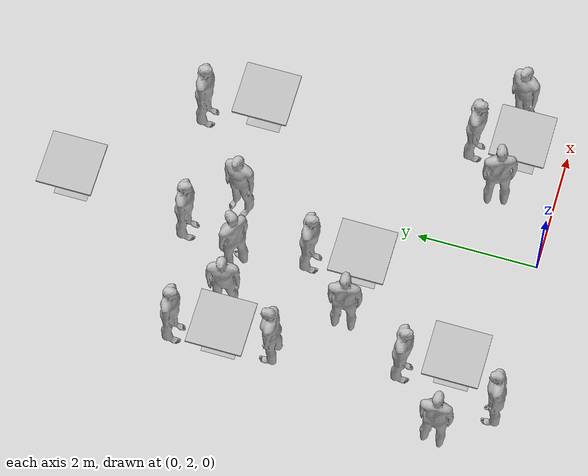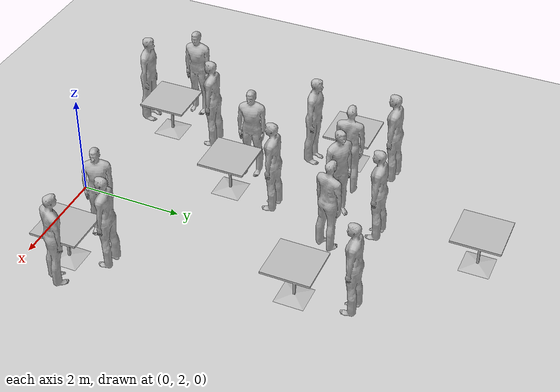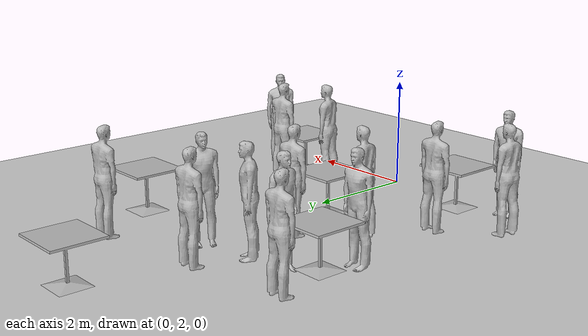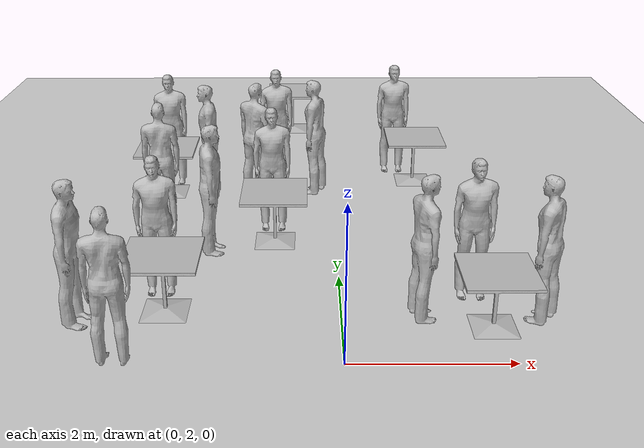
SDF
<sdf version="1.7">
 <world name="default">
  <light name="sun" type="directional">
   <pose>0 0 10 0 -0 0</pose>
   <diffuse>0.8 0.8 0.8 1</diffuse>
   <specular>0.2 0.2 0.2 1</specular>
   <attenuation>
    <range>1000</range>
    <constant>0.9</constant>
    <linear>0.01</linear>
    <quadratic>0.001</quadratic>
   </attenuation>
   <direction>-0.5 0.1 -0.9</direction>
   <spot><inner_angle>0</inner_angle><outer_angle>0</outer_angle><falloff>0</falloff></spot>
  </light>
  <model name="ground_plane">
   <static>1</static>
   <link name="link">
    <collision name="collision">
     <geometry><plane><normal>0 0 1</normal><size>100 100</size></plane></geometry>
     <surface>
      <contact><collide_bitmask>65535</collide_bitmask></contact>
      <friction><ode><mu>100</mu><mu2>50</mu2></ode></friction>
     </surface>
    </collision>
    <visual name="visual">
     <cast_shadows>0</cast_shadows>
     <geometry><plane><normal>0 0 1</normal><size>100 100</size></plane></geometry>
     <material>
      <script><uri>file://media/materials/scripts/gazebo.material</uri><name>Gazebo/Grey</name></script>
     </material>
    </visual>
   </link>
  </model>
  <gravity>0 0 -9.8</gravity>
  <magnetic_field>6e-06 2.3e-05 -4.2e-05</magnetic_field>
  <atmosphere type="adiabatic"/>
  <physics type="ode">
   <max_step_size>0.001</max_step_size>
   <real_time_factor>1</real_time_factor>
   <real_time_update_rate>1000</real_time_update_rate>
  </physics>
  <scene><ambient>0.4 0.4 0.4 1</ambient><background>0.7 0.7 0.7 1</background><shadows>1</shadows></scene>
  <spherical_coordinates>
   <surface_model>EARTH_WGS84</surface_model>
   <latitude_deg>0</latitude_deg>
   <longitude_deg>0</longitude_deg>
   <elevation>0</elevation>
   <heading_deg>0</heading_deg>
  </spherical_coordinates>
  <model name="cafe_table">
   <static>1</static>
   <link name="link">
    <collision name="surface">
     <pose>0 0 0.755 0 -0 0</pose>
     <geometry><box><size>0.913 0.913 0.04</size></box></geometry>
    </collision>
    <collision name="column">
     <pose>0 0 0.37 0 -0 0</pose>
     <geometry><box><size>0.042 0.042 0.74</size></box></geometry>
    </collision>
    <collision name="base">
     <pose>0 0 0.02 0 -0 0</pose>
     <geometry><box><size>0.56 0.56 0.04</size></box></geometry>
    </collision>
    <visual name="visual">
     <geometry><mesh><uri>model://cafe_table/meshes/cafe_table.dae</uri></mesh></geometry>
    </visual>
   </link>
   <pose>-0.714284 9.58499 0.195676 0 -0 0</pose>
  </model>
  <model name="cafe_table_0">
   <static>1</static>
   <link name="link">
    <collision name="surface">
     <pose>0 0 0.755 0 -0 0</pose>
     <geometry><box><size>0.913 0.913 0.04</size></box></geometry>
    </collision>
    <collision name="column">
     <pose>0 0 0.37 0 -0 0</pose>
     <geometry><box><size>0.042 0.042 0.74</size></box></geometry>
    </collision>
    <collision name="base">
     <pose>0 0 0.02 0 -0 0</pose>
     <geometry><box><size>0.56 0.56 0.04</size></box></geometry>
    </collision>
    <visual name="visual">
     <geometry><mesh><uri>model://cafe_table/meshes/cafe_table.dae</uri></mesh></geometry>
    </visual>
   </link>
   <pose>-2.65299 6.49737 0.191224 0 -0 0</pose>
  </model>
  <model name="cafe_table_1">
   <static>1</static>
   <link name="link">
    <collision name="surface">
     <pose>0 0 0.755 0 -0 0</pose>
     <geometry><box><size>0.913 0.913 0.04</size></box></geometry>
    </collision>
    <collision name="column">
     <pose>0 0 0.37 0 -0 0</pose>
     <geometry><box><size>0.042 0.042 0.74</size></box></geometry>
    </collision>
    <collision name="base">
     <pose>0 0 0.02 0 -0 0</pose>
     <geometry><box><size>0.56 0.56 0.04</size></box></geometry>
    </collision>
    <visual name="visual">
     <geometry><mesh><uri>model://cafe_table/meshes/cafe_table.dae</uri></mesh></geometry>
    </visual>
   </link>
   <pose>-2.14691 2.80692 0.215239 0 -0 0</pose>
  </model>
  <model name="cafe_table_2">
   <static>1</static>
   <link name="link">
    <collision name="surface">
     <pose>0 0 0.755 0 -0 0</pose>
     <geometry><box><size>0.913 0.913 0.04</size></box></geometry>
    </collision>
    <collision name="column">
     <pose>0 0 0.37 0 -0 0</pose>
     <geometry><box><size>0.042 0.042 0.74</size></box></geometry>
    </collision>
    <collision name="base">
     <pose>0 0 0.02 0 -0 0</pose>
     <geometry><box><size>0.56 0.56 0.04</size></box></geometry>
    </collision>
    <visual name="visual">
     <geometry><mesh><uri>model://cafe_table/meshes/cafe_table.dae</uri></mesh></geometry>
    </visual>
   </link>
   <pose>-0.883119 4.69335 0.204654 0 -0 0</pose>
  </model>
  <model name="cafe_table_3">
   <static>1</static>
   <link name="link">
    <collision name="surface">
     <pose>0 0 0.755 0 -0 0</pose>
     <geometry><box><size>0.913 0.913 0.04</size></box></geometry>
    </collision>
    <collision name="column">
     <pose>0 0 0.37 0 -0 0</pose>
     <geometry><box><size>0.042 0.042 0.74</size></box></geometry>
    </collision>
    <collision name="base">
     <pose>0 0 0.02 0 -0 0</pose>
     <geometry><box><size>0.56 0.56 0.04</size></box></geometry>
    </collision>
    <visual name="visual">
     <geometry><mesh><uri>model://cafe_table/meshes/cafe_table.dae</uri></mesh></geometry>
    </visual>
   </link>
   <pose>1.3239 6.93338 0.202213 0 -0 0</pose>
  </model>
  <model name="cafe_table_4">
   <static>1</static>
   <link name="link">
    <collision name="surface">
     <pose>0 0 0.755 0 -0 0</pose>
     <geometry><box><size>0.913 0.913 0.04</size></box></geometry>
    </collision>
    <collision name="column">
     <pose>0 0 0.37 0 -0 0</pose>
     <geometry><box><size>0.042 0.042 0.74</size></box></geometry>
    </collision>
    <collision name="base">
     <pose>0 0 0.02 0 -0 0</pose>
     <geometry><box><size>0.56 0.56 0.04</size></box></geometry>
    </collision>
    <visual name="visual">
     <geometry><mesh><uri>model://cafe_table/meshes/cafe_table.dae</uri></mesh></geometry>
    </visual>
   </link>
   <pose>1.84971 2.77203 0 0 -0 0</pose>
  </model>
  <model name="person_standing">
   <link name="link">
    <inertial>
     <pose>0 -0.1 0.95 0 -0 0</pose>
     <mass>80</mass>
     <inertia><ixx>24.88</ixx><ixy>0</ixy><ixz>0</ixz><iyy>25.73</iyy><iyz>0</iyz><izz>2.48</izz></inertia>
    </inertial>
    <collision name="bottom">
     <pose>0 -0.1 0.01 0 -0 0</pose>
     <geometry><box><size>0.5 0.35 0.02</size></box></geometry>
    </collision>
    <collision name="person">
     <pose>0 0 0.02 0.04 -0 0</pose>
     <geometry><mesh><uri>model://person_standing/meshes/standing.dae</uri></mesh></geometry>
    </collision>
    <visual name="visual">
     <pose>0 0 0.02 0.04 -0 0</pose>
     <geometry><mesh><uri>model://person_standing/meshes/standing.dae</uri></mesh></geometry>
    </visual>
   </link>
   <pose>-2.34113 3.71399 -1e-06 -1e-06 1e-06 -0.000112</pose>
  </model>
  <model name="person_standing_0">
   <link name="link">
    <inertial>
     <pose>0 -0.1 0.95 0 -0 0</pose>
     <mass>80</mass>
     <inertia><ixx>24.88</ixx><ixy>0</ixy><ixz>0</ixz><iyy>25.73</iyy><iyz>0</iyz><izz>2.48</izz></inertia>
    </inertial>
    <collision name="bottom">
     <pose>0 -0.1 0.01 0 -0 0</pose>
     <geometry><box><size>0.5 0.35 0.02</size></box></geometry>
    </collision>
    <collision name="person">
     <pose>0 0 0.02 0.04 -0 0</pose>
     <geometry><mesh><uri>model://person_standing/meshes/standing.dae</uri></mesh></geometry>
    </collision>
    <visual name="visual">
     <pose>0 0 0.02 0.04 -0 0</pose>
     <geometry><mesh><uri>model://person_standing/meshes/standing.dae</uri></mesh></geometry>
    </visual>
   </link>
   <pose>-0.941446 5.62477 -0 1e-06 -1e-06 -0.000944</pose>
  </model>
  <model name="person_standing_1">
   <link name="link">
    <inertial>
     <pose>0 -0.1 0.95 0 -0 0</pose>
     <mass>80</mass>
     <inertia><ixx>24.88</ixx><ixy>0</ixy><ixz>0</ixz><iyy>25.73</iyy><iyz>0</iyz><izz>2.48</izz></inertia>
    </inertial>
    <collision name="bottom">
     <pose>0 -0.1 0.01 0 -0 0</pose>
     <geometry><box><size>0.5 0.35 0.02</size></box></geometry>
    </collision>
    <collision name="person">
     <pose>0 0 0.02 0.04 -0 0</pose>
     <geometry><mesh><uri>model://person_standing/meshes/standing.dae</uri></mesh></geometry>
    </collision>
    <visual name="visual">
     <pose>0 0 0.02 0.04 -0 0</pose>
     <geometry><mesh><uri>model://person_standing/meshes/standing.dae</uri></mesh></geometry>
    </visual>
   </link>
   <pose>1.68548 3.59929 -1e-06 0 2e-06 0.001075</pose>
  </model>
  <model name="person_standing_2">
   <link name="link">
    <inertial>
     <pose>0 -0.1 0.95 0 -0 0</pose>
     <mass>80</mass>
     <inertia><ixx>24.88</ixx><ixy>0</ixy><ixz>0</ixz><iyy>25.73</iyy><iyz>0</iyz><izz>2.48</izz></inertia>
    </inertial>
    <collision name="bottom">
     <pose>0 -0.1 0.01 0 -0 0</pose>
     <geometry><box><size>0.5 0.35 0.02</size></box></geometry>
    </collision>
    <collision name="person">
     <pose>0 0 0.02 0.04 -0 0</pose>
     <geometry><mesh><uri>model://person_standing/meshes/standing.dae</uri></mesh></geometry>
    </collision>
    <visual name="visual">
     <pose>0 0 0.02 0.04 -0 0</pose>
     <geometry><mesh><uri>model://person_standing/meshes/standing.dae</uri></mesh></geometry>
    </visual>
   </link>
   <pose>1.06337 7.96996 -0 1e-06 1e-06 -0.000126</pose>
  </model>
  <model name="person_standing_3">
   <link name="link">
    <inertial>
     <pose>0 -0.1 0.95 0 -0 0</pose>
     <mass>80</mass>
     <inertia><ixx>24.88</ixx><ixy>0</ixy><ixz>0</ixz><iyy>25.73</iyy><iyz>0</iyz><izz>2.48</izz></inertia>
    </inertial>
    <collision name="bottom">
     <pose>0 -0.1 0.01 0 -0 0</pose>
     <geometry><box><size>0.5 0.35 0.02</size></box></geometry>
    </collision>
    <collision name="person">
     <pose>0 0 0.02 0.04 -0 0</pose>
     <geometry><mesh><uri>model://person_standing/meshes/standing.dae</uri></mesh></geometry>
    </collision>
    <visual name="visual">
     <pose>0 0 0.02 0.04 -0 0</pose>
     <geometry><mesh><uri>model://person_standing/meshes/standing.dae</uri></mesh></geometry>
    </visual>
   </link>
   <pose>-1.31792 6.65113 -0 1e-06 1e-06 2.44665</pose>
  </model>
  <model name="person_standing_4">
   <link name="link">
    <inertial>
     <pose>0 -0.1 0.95 0 -0 0</pose>
     <mass>80</mass>
     <inertia><ixx>24.88</ixx><ixy>0</ixy><ixz>0</ixz><iyy>25.73</iyy><iyz>0</iyz><izz>2.48</izz></inertia>
    </inertial>
    <collision name="bottom">
     <pose>0 -0.1 0.01 0 -0 0</pose>
     <geometry><box><size>0.5 0.35 0.02</size></box></geometry>
    </collision>
    <collision name="person">
     <pose>0 0 0.02 0.04 -0 0</pose>
     <geometry><mesh><uri>model://person_standing/meshes/standing.dae</uri></mesh></geometry>
    </collision>
    <visual name="visual">
     <pose>0 0 0.02 0.04 -0 0</pose>
     <geometry><mesh><uri>model://person_standing/meshes/standing.dae</uri></mesh></geometry>
    </visual>
   </link>
   <pose>-0.223057 6.86536 -1e-06 -1e-06 1e-06 -1.97871</pose>
  </model>
  <model name="person_standing_5">
   <link name="link">
    <inertial>
     <pose>0 -0.1 0.95 0 -0 0</pose>
     <mass>80</mass>
     <inertia><ixx>24.88</ixx><ixy>0</ixy><ixz>0</ixz><iyy>25.73</iyy><iyz>0</iyz><izz>2.48</izz></inertia>
    </inertial>
    <collision name="bottom">
     <pose>0 -0.1 0.01 0 -0 0</pose>
     <geometry><box><size>0.5 0.35 0.02</size></box></geometry>
    </collision>
    <collision name="person">
     <pose>0 0 0.02 0.04 -0 0</pose>
     <geometry><mesh><uri>model://person_standing/meshes/standing.dae</uri></mesh></geometry>
    </collision>
    <visual name="visual">
     <pose>0 0 0.02 0.04 -0 0</pose>
     <geometry><mesh><uri>model://person_standing/meshes/standing.dae</uri></mesh></geometry>
    </visual>
   </link>
   <pose>-3.3341 2.86268 -0 -1e-06 1e-06 1.45177</pose>
  </model>
  <model name="person_standing_6">
   <link name="link">
    <inertial>
     <pose>0 -0.1 0.95 0 -0 0</pose>
     <mass>80</mass>
     <inertia><ixx>24.88</ixx><ixy>0</ixy><ixz>0</ixz><iyy>25.73</iyy><iyz>0</iyz><izz>2.48</izz></inertia>
    </inertial>
    <collision name="bottom">
     <pose>0 -0.1 0.01 0 -0 0</pose>
     <geometry><box><size>0.5 0.35 0.02</size></box></geometry>
    </collision>
    <collision name="person">
     <pose>0 0 0.02 0.04 -0 0</pose>
     <geometry><mesh><uri>model://person_standing/meshes/standing.dae</uri></mesh></geometry>
    </collision>
    <visual name="visual">
     <pose>0 0 0.02 0.04 -0 0</pose>
     <geometry><mesh><uri>model://person_standing/meshes/standing.dae</uri></mesh></geometry>
    </visual>
   </link>
   <pose>-2.62835 1.96274 -0 1e-06 1e-06 -3.10312</pose>
  </model>
  <model name="person_standing_7">
   <link name="link">
    <inertial>
     <pose>0 -0.1 0.95 0 -0 0</pose>
     <mass>80</mass>
     <inertia><ixx>24.88</ixx><ixy>0</ixy><ixz>0</ixz><iyy>25.73</iyy><iyz>0</iyz><izz>2.48</izz></inertia>
    </inertial>
    <collision name="bottom">
     <pose>0 -0.1 0.01 0 -0 0</pose>
     <geometry><box><size>0.5 0.35 0.02</size></box></geometry>
    </collision>
    <collision name="person">
     <pose>0 0 0.02 0.04 -0 0</pose>
     <geometry><mesh><uri>model://person_standing/meshes/standing.dae</uri></mesh></geometry>
    </collision>
    <visual name="visual">
     <pose>0 0 0.02 0.04 -0 0</pose>
     <geometry><mesh><uri>model://person_standing/meshes/standing.dae</uri></mesh></geometry>
    </visual>
   </link>
   <pose>-0.950915 7.69297 -0 0 -1e-06 0.001843</pose>
  </model>
  <model name="person_standing_9">
   <link name="link">
    <inertial>
     <pose>0 -0.1 0.95 0 -0 0</pose>
     <mass>80</mass>
     <inertia><ixx>24.88</ixx><ixy>0</ixy><ixz>0</ixz><iyy>25.73</iyy><iyz>0</iyz><izz>2.48</izz></inertia>
    </inertial>
    <collision name="bottom">
     <pose>0 -0.1 0.01 0 -0 0</pose>
     <geometry><box><size>0.5 0.35 0.02</size></box></geometry>
    </collision>
    <collision name="person">
     <pose>0 0 0.02 0.04 -0 0</pose>
     <geometry><mesh><uri>model://person_standing/meshes/standing.dae</uri></mesh></geometry>
    </collision>
    <visual name="visual">
     <pose>0 0 0.02 0.04 -0 0</pose>
     <geometry><mesh><uri>model://person_standing/meshes/standing.dae</uri></mesh></geometry>
    </visual>
   </link>
   <pose>-1.86049 4.73445 -0 -0 -1e-06 1.60834</pose>
  </model>
  <model name="person_standing_10">
   <link name="link">
    <inertial>
     <pose>0 -0.1 0.95 0 -0 0</pose>
     <mass>80</mass>
     <inertia><ixx>24.88</ixx><ixy>0</ixy><ixz>0</ixz><iyy>25.73</iyy><iyz>0</iyz><izz>2.48</izz></inertia>
    </inertial>
    <collision name="bottom">
     <pose>0 -0.1 0.01 0 -0 0</pose>
     <geometry><box><size>0.5 0.35 0.02</size></box></geometry>
    </collision>
    <collision name="person">
     <pose>0 0 0.02 0.04 -0 0</pose>
     <geometry><mesh><uri>model://person_standing/meshes/standing.dae</uri></mesh></geometry>
    </collision>
    <visual name="visual">
     <pose>0 0 0.02 0.04 -0 0</pose>
     <geometry><mesh><uri>model://person_standing/meshes/standing.dae</uri></mesh></geometry>
    </visual>
   </link>
   <pose>-2.70451 7.39009 -0 0 -2e-06 -0.040209</pose>
  </model>
  <model name="person_standing_8">
   <link name="link">
    <inertial>
     <pose>0 -0.1 0.95 0 -0 0</pose>
     <mass>80</mass>
     <inertia><ixx>24.88</ixx><ixy>0</ixy><ixz>0</ixz><iyy>25.73</iyy><iyz>0</iyz><izz>2.48</izz></inertia>
    </inertial>
    <collision name="bottom">
     <pose>0 -0.1 0.01 0 -0 0</pose>
     <geometry><box><size>0.5 0.35 0.02</size></box></geometry>
    </collision>
    <collision name="person">
     <pose>0 0 0.02 0.04 -0 0</pose>
     <geometry><mesh><uri>model://person_standing/meshes/standing.dae</uri></mesh></geometry>
    </collision>
    <visual name="visual">
     <pose>0 0 0.02 0.04 -0 0</pose>
     <geometry><mesh><uri>model://person_standing/meshes/standing.dae</uri></mesh></geometry>
    </visual>
   </link>
   <pose>-2.62139 5.61382 -0 -1e-06 1e-06 3.10933</pose>
  </model>
  <model name="person_standing_11">
   <link name="link">
    <inertial>
     <pose>0 -0.1 0.95 0 -0 0</pose>
     <mass>80</mass>
     <inertia><ixx>24.88</ixx><ixy>0</ixy><ixz>0</ixz><iyy>25.73</iyy><iyz>0</iyz><izz>2.48</izz></inertia>
    </inertial>
    <collision name="bottom">
     <pose>0 -0.1 0.01 0 -0 0</pose>
     <geometry><box><size>0.5 0.35 0.02</size></box></geometry>
    </collision>
    <collision name="person">
     <pose>0 0 0.02 0.04 -0 0</pose>
     <geometry><mesh><uri>model://person_standing/meshes/standing.dae</uri></mesh></geometry>
    </collision>
    <visual name="visual">
     <pose>0 0 0.02 0.04 -0 0</pose>
     <geometry><mesh><uri>model://person_standing/meshes/standing.dae</uri></mesh></geometry>
    </visual>
   </link>
   <pose>-1.91805 6.66041 -0 1e-06 -1e-06 -1.52931</pose>
  </model>
  <model name="person_standing_12">
   <link name="link">
    <inertial>
     <pose>0 -0.1 0.95 0 -0 0</pose>
     <mass>80</mass>
     <inertia><ixx>24.88</ixx><ixy>0</ixy><ixz>0</ixz><iyy>25.73</iyy><iyz>0</iyz><izz>2.48</izz></inertia>
    </inertial>
    <collision name="bottom">
     <pose>0 -0.1 0.01 0 -0 0</pose>
     <geometry><box><size>0.5 0.35 0.02</size></box></geometry>
    </collision>
    <collision name="person">
     <pose>0 0 0.02 0.04 -0 0</pose>
     <geometry><mesh><uri>model://person_standing/meshes/standing.dae</uri></mesh></geometry>
    </collision>
    <visual name="visual">
     <pose>0 0 0.02 0.04 -0 0</pose>
     <geometry><mesh><uri>model://person_standing/meshes/standing.dae</uri></mesh></geometry>
    </visual>
   </link>
   <pose>0.906766 2.9395 -1e-06 -1e-06 1e-06 1.81759</pose>
  </model>
  <model name="person_standing_13">
   <link name="link">
    <inertial>
     <pose>0 -0.1 0.95 0 -0 0</pose>
     <mass>80</mass>
     <inertia><ixx>24.88</ixx><ixy>0</ixy><ixz>0</ixz><iyy>25.73</iyy><iyz>0</iyz><izz>2.48</izz></inertia>
    </inertial>
    <collision name="bottom">
     <pose>0 -0.1 0.01 0 -0 0</pose>
     <geometry><box><size>0.5 0.35 0.02</size></box></geometry>
    </collision>
    <collision name="person">
     <pose>0 0 0.02 0.04 -0 0</pose>
     <geometry><mesh><uri>model://person_standing/meshes/standing.dae</uri></mesh></geometry>
    </collision>
    <visual name="visual">
     <pose>0 0 0.02 0.04 -0 0</pose>
     <geometry><mesh><uri>model://person_standing/meshes/standing.dae</uri></mesh></geometry>
    </visual>
   </link>
   <pose>2.52584 2.86552 -0 1e-06 -1e-06 -2.23689</pose>
  </model>
 </world>
</sdf>
